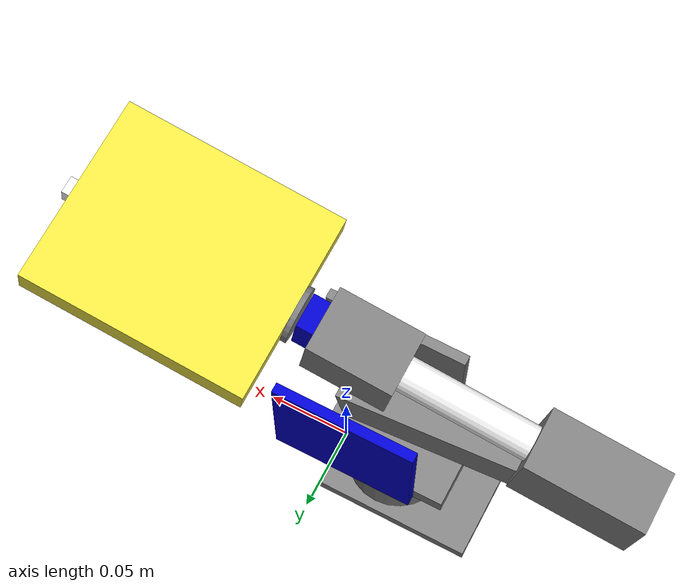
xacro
<?xml version="1.0"?>
<robot xmlns:xacro="http://www.ros.org/wiki/xacro" name="robit_urdf">

	<!-- constants -->
	<xacro:property name="pi" value="3.141592654"/>
	<xacro:property name="deg" value="0.017453293"/>

	<!-- Materials -->

	<material name="blue">
		<color rgba="0 0 0.8 1"/>
	</material>

	<material name="white">
		<color rgba="1 1 1 1"/>
	</material>

	<material name="gray">
		<color rgba="0.5 0.5 0.5 1"/>
	</material>

	<!-- Dimensions -->

	<xacro:property name="base_link_l" value="0.095"/>
	<xacro:property name="base_link_w" value="0.07"/>
	<xacro:property name="base_link_h" value="0.008"/>

	<xacro:property name="shoulder_l" value="0.038"/>
	<xacro:property name="shoulder_r" value="0.03"/>

	<xacro:property name="second_base_l" value="0.08"/>
	<xacro:property name="second_base_w" value="0.056"/>
	<xacro:property name="second_base_h" value="0.011"/>

	<xacro:property name="bracket_l" value="0.085"/>
	<xacro:property name="bracket_w" value="0.006"/>
	<xacro:property name="bracket_h" value="0.08"/>

	<xacro:property name="upper_arm_l" value="0.025"/>
	<xacro:property name="upper_arm_w" value="0.027"/>
	<xacro:property name="upper_arm_h" value="0.12"/>

	<xacro:property name="elbow_l" value="0.07"/>
	<xacro:property name="elbow_w" value="0.036"/>
	<xacro:property name="elbow_h" value="0.042"/>

	<xacro:property name="forearm_l" value="0.075"/>
	<xacro:property name="forearm_r" value="0.01"/>

	<xacro:property name="wrist_l" value="0.05"/>
	<xacro:property name="wrist_w" value="0.038"/>
	<xacro:property name="wrist_h" value="0.03"/>

	<xacro:property name="hand_l" value="0.03"/>
	<xacro:property name="hand_w" value="0.02"/>
	<xacro:property name="hand_h" value="0.025"/>

	<xacro:property name="finger_l" value="0.003"/>
	<xacro:property name="finger_r" value="0.016"/>

	<xacro:property name="gripper_l" value="0.13"/>
	<xacro:property name="gripper_w" value="0.112"/>
	<xacro:property name="gripper_h" value="0.016"/>

	<!-- MOI -->
	<xacro:macro name="default_inertial" params="mass">
		<inertial>
			<mass value="${mass}"/>
			<inertia ixx="0.1" ixy="0.0" ixz="0.0" iyy="0.1" iyz="0.0" izz="0.1"/>
		</inertial>
	</xacro:macro>

	<link name="base_link">
		<visual>
			<geometry>
				<box size="${base_link_l} ${base_link_w} ${base_link_h}"/>
				<material name="gray"/>
			</geometry>
			<origin rpy="0 0 0" xyz="-0.0475 0 0"/>
			<material name="gray"/>
		</visual>
		 <collision>
			<geometry>
				<box size="${base_link_l} ${base_link_w} ${base_link_h}"/>
			</geometry>
			<origin rpy="0 0 0" xyz="-0.0475 0 0"/>
		</collision>
	</link>

	<link name="shoulder">
		<visual>
			<geometry>
				<cylinder length="${shoulder_l}" radius="${shoulder_r}"/>
			</geometry>
			<origin rpy="0 0 0" xyz="0 0 0.019"/>
			<material name="gray"/>
		</visual>
		<collision>
			<geometry>
				<cylinder length="${shoulder_l}" radius="${shoulder_r}"/>
			</geometry>
			<origin rpy="0 0 0" xyz="0 0 0.019"/>
		</collision>
		<xacro:default_inertial mass="0.001"/>
	</link>

	<!-- Servo 1 -->
	<joint name="shoulder_rotate" type="revolute">
		<parent link="base_link"/>
		<child link="shoulder"/>
		<axis xyz="0 0 1"/>
		<origin xyz="-0.035 0 0.004"/>
		<limit effort="100.0" lower="-1.67552" upper="1.5708" velocity="10000000"/>
	</joint>

	<link name="second_base">
		<visual>
			<geometry>
				<box size="${second_base_l} ${second_base_w} ${second_base_h}"/>
			</geometry>
			<origin rpy="0 0 0" xyz="0 0 0.0055"/>
			<material name="gray"/>
		</visual>
		<collision>
			<geometry>
				<box size="${second_base_l} ${second_base_w} ${second_base_h}"/>
			</geometry>
			<origin rpy="0 0 0" xyz="0 0 0.0055"/>
		</collision>
		<xacro:default_inertial mass="0.001"/>
	</link>
	<joint name="shoulder_to_second_base" type="fixed">
		<parent link="shoulder"/>
		<child link="second_base"/>
		<origin xyz="0 0 0.038"/>
	</joint>

	<link name="left_bracket">
		<visual>
			<geometry>
				<box size="${bracket_l} ${bracket_w} ${bracket_h}"/>
			</geometry>
			<origin rpy="0 0 0" xyz="0.02 0.003 0.04"/>
			<material name="blue"/>
		</visual>
		<collision>
			<geometry>
				<box size="${bracket_l} ${bracket_w} ${bracket_h}"/>
			</geometry>
			<origin rpy="0 0 0" xyz="0.02 0.003 0.04"/>
		</collision>
		<xacro:default_inertial mass="0.001"/>
	</link>
	<joint name="second_base_to_left_bracket" type="fixed">
		<parent link="second_base"/>
		<child link="left_bracket"/>
		<origin xyz="0 0.028 0"/>
	</joint>

	<link name="right_bracket">
		<visual>
			<geometry>
				<box size="${bracket_l} ${bracket_w} ${bracket_h}"/>
			</geometry>
			<origin rpy="0 0 0" xyz="0.02 -0.003 0.04"/>
			<material name="gray"/>
		</visual>
		<collision>
			<geometry>
				<box size="${bracket_l} ${bracket_w} ${bracket_h}"/>
			</geometry>
			<origin rpy="0 0 0" xyz="0.02 -0.003 0.04"/>
		</collision>
		<xacro:default_inertial mass="0.001"/>
	</link>
	<joint name="second_base_to_right_bracket" type="fixed">
		<parent link="second_base"/>
		<child link="right_bracket"/>
		<origin xyz="0 -0.028 0"/>
	</joint>

	<link name="upper_arm">
		<visual>
			<geometry>
				<box size="${upper_arm_l} ${upper_arm_w} ${upper_arm_h}"/>
			</geometry>
			<origin rpy="0 0 0" xyz="0 -0.024 0.06"/>
			<material name="gray"/>
		</visual>
		<collision>
			<geometry>
				<box size="${upper_arm_l} ${upper_arm_w} ${upper_arm_h}"/>
			</geometry>
			<origin rpy="0 0 0" xyz="0 -0.024 0.06"/>
		</collision>
		<xacro:default_inertial mass="0.001"/>
	</link>
	<!-- Servo 2 -->
	<joint name="left_bracket_to_upper_arm" type="revolute">
		<parent link="left_bracket"/>
		<child link="upper_arm"/>
		<origin rpy="0 -1.36136 0" xyz="0.03 0 0.06"/>
		<axis xyz="0 1 0"/>
		<limit effort="100.0" lower="0" upper="2.58309" velocity="10000000"/>
	</joint>

	<link name="elbow">
		<visual>
			<geometry>
				<box size="${elbow_l} ${elbow_w} ${elbow_h}"/>
			</geometry>
			<origin xyz="-0.02 0 0.0125"/>
			<material name="gray"/>
		</visual>
		<collision>
			<geometry>
				<box size="${elbow_l} ${elbow_w} ${elbow_h}"/>
			</geometry>
			<origin xyz="-0.02 0 0.0125"/>
		</collision>
		<xacro:default_inertial mass="0.001"/>
	</link>

	<!-- Servo 3 -->
	<joint name="elbow_joint" type="revolute">
		<parent link="upper_arm"/>
		<child link="elbow"/>
		<origin rpy="0 1.22173 0" xyz="0 -0.024 0.12"/>
		<axis xyz="0 1 0"/>
		<limit effort="100.0" lower="-2.30383" upper="0" velocity="10000000"/>
	</joint>

	<link name="forearm">
		<visual>
			<geometry>
				<cylinder length="${forearm_l}" radius="${forearm_r}"/>
			</geometry>
			<origin rpy="0 1.5708 0" xyz="0.0375 0 0"/>
			<material name="white"/>
		</visual>
		<collision>
			<geometry>
				<cylinder length="${forearm_l}" radius="${forearm_r}"/>
			</geometry>
			<origin rpy="0 1.5708 0" xyz="0.0375 0 0"/>
		</collision>
		<xacro:default_inertial mass="0.001"/>
	</link>

	<!-- Servo 4 -->
	<joint name="forearm_rotate" type="revolute">
		<parent link="elbow"/>
		<child link="forearm"/>
		<axis xyz="1 0 0"/>
		<origin xyz="0.015 0 0.02"/>
		<limit effort="100.0" lower="-1.88496" upper="1.53938" velocity="10000000"/>
	</joint>

	<link name="wrist">
		<visual>
			<geometry>
				<box size="${wrist_l} ${wrist_w} ${wrist_h}"/>
			</geometry>
			<origin xyz="0.025 0 0"/>
			<material name="gray"/>
		</visual>
		<collision>
			<geometry>
				<box size="${wrist_l} ${wrist_w} ${wrist_h}"/>
			</geometry>
			<origin xyz="0.025 0 0"/>
		</collision>
		<xacro:default_inertial mass="0.001"/>
	</link>
	<joint name="forearm_to_wrist" type="fixed">
		<parent link="forearm"/>
		<child link="wrist"/>
		<origin xyz="0.075 0 0"/>
	</joint>

	<link name="hand">
		<visual>
			<geometry>
				<box size="${hand_l} ${hand_w} ${hand_h}"/>
			</geometry>
			<origin xyz="0.01 0 0"/>
			<material name="blue"/>
		</visual>
		<collision>
			<geometry>
				<box size="${hand_l} ${hand_w} ${hand_h}"/>
			</geometry>
			<origin xyz="0.01 0 0"/>
		</collision>
		<xacro:default_inertial mass="0.001"/>
	</link>

	<!--Servo 5 -->

	<joint name="wrist_joint" type="revolute">
		<parent link="wrist"/>
		<child link="hand"/>
		<axis xyz="0 1 0"/>
		<origin xyz="0.035 0 0"/>
		<limit effort="100.0" lower="-1.423" upper="1.571" velocity="10000000"/>
	</joint>

	<link name="finger">
		<visual>
			<geometry>
				<cylinder length="${finger_l}" radius="${finger_r}"/>
			</geometry>
			<origin rpy="0 1.5708 0" xyz="0.002 0 0"/>
			<material name="gray"/>
		</visual>
		<collision>
			<geometry>
				<cylinder length="${finger_l}" radius="${finger_r}"/>
			</geometry>
			<origin rpy="0 1.5708 0" xyz="0.002 0 0"/>
		</collision>
		<xacro:default_inertial mass="0.001"/>
	</link>
	<joint name="finger_rotate" type="revolute">
		<parent link="hand"/>
		<child link="finger"/>
		<axis xyz="1 0 0"/>
		<origin xyz="0.026 0 0"/>
		<limit effort="100.0" lower="-1.2" upper="1.2" velocity="10000000"/>
	</joint>

 	<link name="gripper">
		<visual>
			<geometry>
				<box size="${gripper_l} ${gripper_w} ${gripper_h}"/>
			</geometry>
			<origin xyz="0.065 0 0"/>
		</visual>
		<collision>
			<geometry>
				<box size="${gripper_l} ${gripper_w} ${gripper_h}"/>
			</geometry>
			<origin xyz="0.065 0 0"/>
		</collision>
		<xacro:default_inertial mass="0.001"/>
	</link>
	<joint name="finger_to_gripper" type="fixed">
		<parent link="finger"/>
		<child link="gripper"/>
		<origin xyz="0.004 0 0"/>
	</joint>

	<link name="tip">
		<visual>
			<geometry>
				<box size="0.01 0.01 0.01"/>
			</geometry>
			<material name="white"/>
			<origin xyz="0.0 0 0"/>
		</visual>
		<collision>
			<geometry>
				<box size="0.01 0.01 0.01"/>
			</geometry>
			<origin xyz="0.0 0 0"/>
		</collision>
		<xacro:default_inertial mass="0.001"/>
	</link>

	<joint name="gripper_to_tip" type="fixed">
		<parent link="gripper"/>
		<child link="tip"/>
		<origin xyz="0.13 0 0"/>
	</joint>

</robot>
